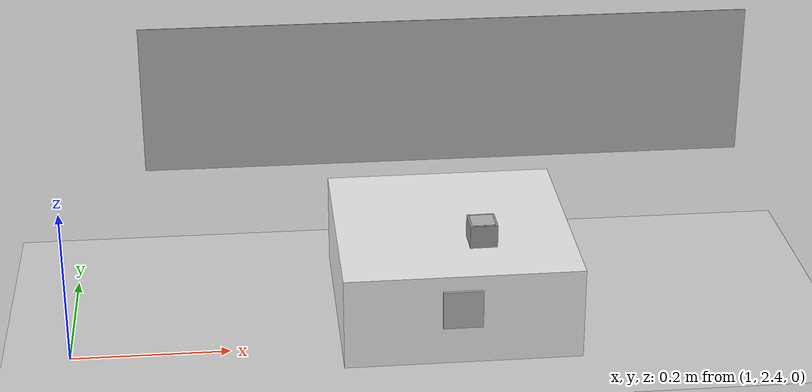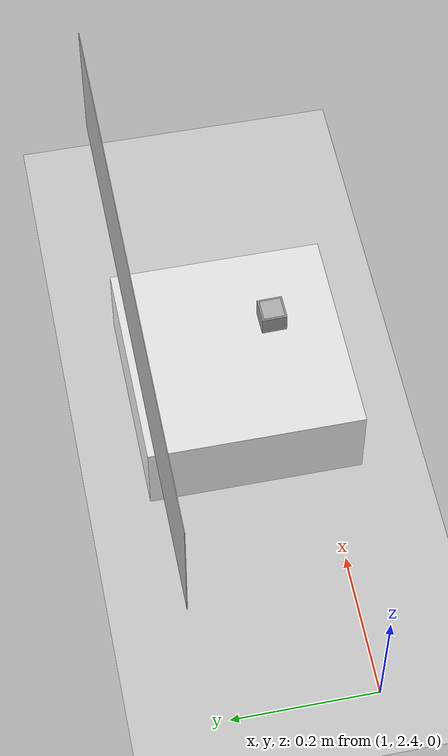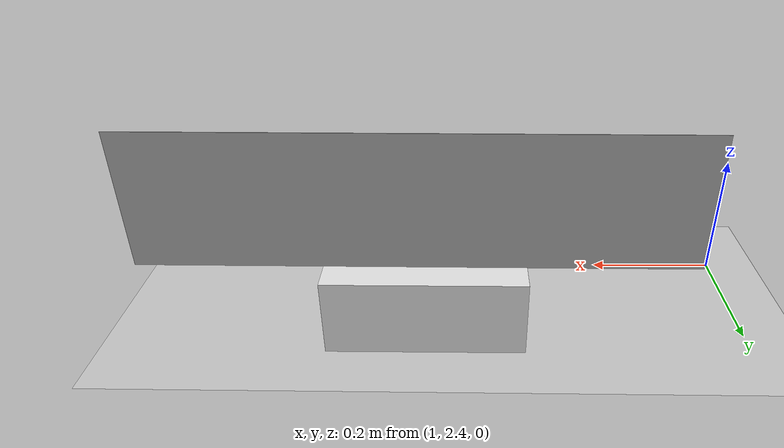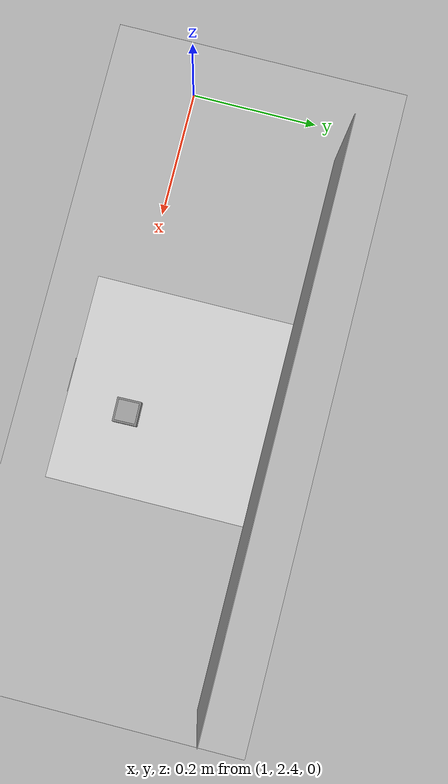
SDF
<sdf version="1.6">
 <world name="default">
  <model name="ground_plane">
   <static>1</static>
   <link name="link">
    <collision name="collision">
     <geometry><plane><normal>0 0 1</normal><size>100 100</size></plane></geometry>
     <surface><friction><ode><mu>100</mu><mu2>50</mu2></ode></friction></surface>
    </collision>
    <visual name="visual">
     <cast_shadows>0</cast_shadows>
     <geometry><plane><normal>0 0 1</normal><size>100 100</size></plane></geometry>
     <material>
      <script><uri>file://media/materials/scripts/gazebo.material</uri><name>Gazebo/Grey</name></script>
     </material>
    </visual>
   </link>
  </model>
  <model name="charge_pile_0">
   <link name="link_0">
    <pose>0.001175 0.064666 -0.007829 0 -0 0</pose>
    <inertial>
     <mass>1</mass>
     <inertia>
      <ixx>0.166667</ixx>
      <ixy>0</ixy>
      <ixz>0</ixz>
      <iyy>0.166667</iyy>
      <iyz>0</iyz>
      <izz>0.166667</izz>
     </inertia>
    </inertial>
    <visual name="visual">
     <geometry><box><size>0.3 0.3 0.12</size></box></geometry>
     <material>
      <lighting>1</lighting>
      <script><uri>file://media/materials/scripts/gazebo.material</uri><name>Gazebo/White</name></script>
      <ambient>0.3 0.3 0.3 1</ambient>
      <diffuse>0.7 0.7 0.7 1</diffuse>
      <specular>0.01 0.01 0.01 1</specular>
      <emissive>0 0 0 1</emissive>
      <shader type="vertex"><normal_map>__default__</normal_map></shader>
     </material>
    </visual>
    <collision name="collision">
     <geometry><box><size>0.3 0.3 0.12</size></box></geometry>
     <surface>
      <friction>
       <ode><mu>1000</mu><mu2>1000</mu2><fdir1>0 0 0</fdir1><slip1>0</slip1><slip2>0</slip2></ode>
       <torsional>
        <coefficient>1</coefficient>
        <patch_radius>0</patch_radius>
        <surface_radius>0</surface_radius>
        <use_patch_radius>1</use_patch_radius>
        <ode><slip>0</slip></ode>
       </torsional>
      </friction>
      <bounce><restitution_coefficient>0</restitution_coefficient><threshold>1e+06</threshold></bounce>
      <contact>
       <collide_without_contact>0</collide_without_contact>
       <collide_without_contact_bitmask>1</collide_without_contact_bitmask>
       <collide_bitmask>1</collide_bitmask>
       <ode>
        <soft_cfm>0</soft_cfm>
        <soft_erp>0.2</soft_erp>
        <kp>1e+13</kp>
        <kd>1</kd>
        <max_vel>0.01</max_vel>
        <min_depth>0</min_depth>
       </ode>
       <bullet>
        <split_impulse>1</split_impulse>
        <split_impulse_penetration_threshold>-0.01</split_impulse_penetration_threshold>
        <soft_cfm>0</soft_cfm>
        <soft_erp>0.2</soft_erp>
        <kp>1e+13</kp>
        <kd>1</kd>
       </bullet>
      </contact>
     </surface>
    </collision>
   </link>
   <model name="ar_box0_50">
    <link name="link_0">
     <inertial>
      <mass>1.87342e-05</mass>
      <inertia>
       <ixx>9.25984e-08</ixx>
       <ixy>0</ixy>
       <ixz>0</ixz>
       <iyy>1.0155e-07</iyy>
       <iyz>0</iyz>
       <izz>1.22113e-07</izz>
      </inertia>
     </inertial>
     <visual name="visual">
      <geometry><box><size>0.05 0.05 0.05</size></box></geometry>
      <material>
       <lighting>1</lighting>
       <script>
        <uri>model://ar_box0_50/materials/scripts</uri>
        <uri>model://ar_box0_50/materials/textures</uri>
        <name>ArBox050/Image</name>
       </script>
       <ambient>0.3 0.3 0.3 1</ambient>
       <diffuse>0.7 0.7 0.7 1</diffuse>
       <specular>0.01 0.01 0.01 1</specular>
       <emissive>0 0 0 1</emissive>
      </material>
      <cast_shadows>0</cast_shadows>
     </visual>
     <collision name="collision">
      <geometry><box><size>0.05 0.05 0.05</size></box></geometry>
      <surface>
       <friction>
        <ode><mu>100</mu><mu2>100</mu2><fdir1>0 0 0</fdir1><slip1>0</slip1><slip2>0</slip2></ode>
        <torsional>
         <coefficient>1</coefficient>
         <patch_radius>0</patch_radius>
         <surface_radius>0</surface_radius>
         <use_patch_radius>1</use_patch_radius>
         <ode><slip>0</slip></ode>
        </torsional>
       </friction>
       <bounce><restitution_coefficient>0</restitution_coefficient><threshold>1e+06</threshold></bounce>
       <contact>
        <collide_without_contact>0</collide_without_contact>
        <collide_without_contact_bitmask>1</collide_without_contact_bitmask>
        <collide_bitmask>1</collide_bitmask>
        <ode>
         <soft_cfm>0</soft_cfm>
         <soft_erp>0.2</soft_erp>
         <kp>1e+13</kp>
         <kd>1</kd>
         <max_vel>0.01</max_vel>
         <min_depth>0</min_depth>
        </ode>
        <bullet>
         <split_impulse>1</split_impulse>
         <split_impulse_penetration_threshold>-0.01</split_impulse_penetration_threshold>
         <soft_cfm>0</soft_cfm>
         <soft_erp>0.2</soft_erp>
         <kp>1e+13</kp>
         <kd>1</kd>
        </bullet>
       </contact>
      </surface>
     </collision>
    </link>
    <static>0</static>
    <pose>-0.001175 -0.064151 0.007829 0 -0 0</pose>
   </model>
   <joint name="link_0_JOINT_0" type="fixed">
    <parent>link_0</parent>
    <child>ar_box0_50::link_0</child>
    <physics>
     <ode><limit><cfm>0</cfm><erp>0.2</erp></limit><suspension><cfm>0</cfm><erp>0.2</erp></suspension></ode>
    </physics>
   </joint>
   <static>0</static>
   <pose>1.48811 2.43027 0.067829 0 -1e-06 0.00331</pose>
  </model>
  <model name="Textdepot">
   <link name="link_0">
    <inertial>
     <mass>1</mass>
     <inertia>
      <ixx>0.166667</ixx>
      <ixy>0</ixy>
      <ixz>0</ixz>
      <iyy>0.166667</iyy>
      <iyz>0</iyz>
      <izz>0.166667</izz>
     </inertia>
    </inertial>
    <visual name="visual">
     <geometry><box><size>0.799997 0.001 0.2</size></box></geometry>
     <material>
      <lighting>1</lighting>
      <script>
       <uri>model://Text/materials/scripts</uri>
       <uri>model://Text/materials/textures</uri>
       <name>Depot/Image</name>
      </script>
      <ambient>0.3 0.3 0.3 1</ambient>
      <diffuse>0.7 0.7 0.7 1</diffuse>
      <specular>0.01 0.01 0.01 1</specular>
      <emissive>0 0 0 1</emissive>
      <shader type="vertex"><normal_map>__default__</normal_map></shader>
     </material>
    </visual>
    <collision name="collision">
     <geometry><box><size>0.000999982 0.001 0.000999956</size></box></geometry>
     <surface>
      <friction>
       <ode><mu>1</mu><mu2>1</mu2><fdir1>0 0 0</fdir1><slip1>0</slip1><slip2>0</slip2></ode>
       <torsional>
        <coefficient>1</coefficient>
        <patch_radius>0</patch_radius>
        <surface_radius>0</surface_radius>
        <use_patch_radius>1</use_patch_radius>
        <ode><slip>0</slip></ode>
       </torsional>
      </friction>
      <bounce><restitution_coefficient>0</restitution_coefficient><threshold>1e+06</threshold></bounce>
      <contact>
       <collide_without_contact>0</collide_without_contact>
       <collide_without_contact_bitmask>1</collide_without_contact_bitmask>
       <collide_bitmask>1</collide_bitmask>
       <ode>
        <soft_cfm>0</soft_cfm>
        <soft_erp>0.2</soft_erp>
        <kp>1e+13</kp>
        <kd>1</kd>
        <max_vel>0.01</max_vel>
        <min_depth>0</min_depth>
       </ode>
       <bullet>
        <split_impulse>1</split_impulse>
        <split_impulse_penetration_threshold>-0.01</split_impulse_penetration_threshold>
        <soft_cfm>0</soft_cfm>
        <soft_erp>0.2</soft_erp>
        <kp>1e+13</kp>
        <kd>1</kd>
       </bullet>
      </contact>
     </surface>
    </collision>
   </link>
   <static>1</static>
   <pose>1.49576 2.63584 0.246075 0 -0 0</pose>
  </model>
  <model name="ar_box2_one_0">
   <link name="link_0">
    <inertial>
     <mass>0.2</mass>
     <inertia>
      <ixx>0.166667</ixx>
      <ixy>0</ixy>
      <ixz>0</ixz>
      <iyy>0.166667</iyy>
      <iyz>0</iyz>
      <izz>0.166667</izz>
     </inertia>
    </inertial>
    <visual name="visual">
     <geometry><box><size>0.035 0.035 0.03</size></box></geometry>
     <material>
      <lighting>1</lighting>
      <script><uri>file://media/materials/scripts/gazebo.material</uri><name>Gazebo/Grey</name></script>
      <ambient>0.3 0.3 0.3 1</ambient>
      <diffuse>0.7 0.7 0.7 1</diffuse>
      <specular>0.01 0.01 0.01 1</specular>
      <emissive>1 1 1 1</emissive>
      <shader type="vertex"><normal_map>__default__</normal_map></shader>
     </material>
    </visual>
    <collision name="collision">
     <geometry><cylinder><radius>0.0214</radius><length>0.03</length></cylinder></geometry>
     <surface>
      <friction><ode><mu>1</mu><mu2>1</mu2></ode></friction>
      <bounce><restitution_coefficient>0</restitution_coefficient><threshold>1e+06</threshold></bounce>
      <contact>
       <collide_without_contact>0</collide_without_contact>
       <collide_without_contact_bitmask>1</collide_without_contact_bitmask>
       <collide_bitmask>1</collide_bitmask>
       <ode>
        <soft_cfm>0</soft_cfm>
        <soft_erp>0.2</soft_erp>
        <kp>1e+13</kp>
        <kd>1</kd>
        <max_vel>0.01</max_vel>
        <min_depth>0</min_depth>
       </ode>
       <bullet>
        <split_impulse>1</split_impulse>
        <split_impulse_penetration_threshold>-0.01</split_impulse_penetration_threshold>
        <soft_cfm>0</soft_cfm>
        <soft_erp>0.2</soft_erp>
        <kp>1e+13</kp>
        <kd>1</kd>
       </bullet>
      </contact>
     </surface>
    </collision>
   </link>
   <model name="ar_box2">
    <link name="link_0">
     <inertial>
      <mass>1.87342e-05</mass>
      <inertia>
       <ixx>9.25984e-08</ixx>
       <ixy>0</ixy>
       <ixz>0</ixz>
       <iyy>1.0155e-07</iyy>
       <iyz>0</iyz>
       <izz>1.22113e-07</izz>
      </inertia>
     </inertial>
     <visual name="visual">
      <geometry><box><size>0.0298 0.0298 0.0305</size></box></geometry>
      <material>
       <lighting>1</lighting>
       <script>
        <uri>model://ar_box2/materials/scripts</uri>
        <uri>model://ar_box2/materials/textures</uri>
        <name>ArBox2/Image</name>
       </script>
       <ambient>0.3 0.3 0.3 1</ambient>
       <diffuse>0.7 0.7 0.7 1</diffuse>
       <specular>0.01 0.01 0.01 1</specular>
       <emissive>1 1 1 1</emissive>
      </material>
      <cast_shadows>0</cast_shadows>
     </visual>
     <collision name="collision">
      <geometry><box><size>0.03 0.03 0.03</size></box></geometry>
      <surface>
       <friction><ode><mu>2</mu><mu2>2</mu2></ode></friction>
       <bounce><restitution_coefficient>0</restitution_coefficient><threshold>1e+06</threshold></bounce>
       <contact>
        <collide_without_contact>0</collide_without_contact>
        <collide_without_contact_bitmask>1</collide_without_contact_bitmask>
        <collide_bitmask>1</collide_bitmask>
        <ode>
         <soft_cfm>0</soft_cfm>
         <soft_erp>0.2</soft_erp>
         <kp>1e+13</kp>
         <kd>1</kd>
         <max_vel>0.01</max_vel>
         <min_depth>0</min_depth>
        </ode>
        <bullet>
         <split_impulse>1</split_impulse>
         <split_impulse_penetration_threshold>-0.01</split_impulse_penetration_threshold>
         <soft_cfm>0</soft_cfm>
         <soft_erp>0.2</soft_erp>
         <kp>1e+13</kp>
         <kd>1</kd>
        </bullet>
       </contact>
      </surface>
     </collision>
    </link>
    <static>0</static>
   </model>
   <joint name="link_0_JOINT_0" type="fixed">
    <parent>link_0</parent>
    <child>ar_box2::link_0</child>
    <physics>
     <ode><limit><cfm>0</cfm><erp>0.2</erp></limit><suspension><cfm>0</cfm><erp>0.2</erp></suspension></ode>
    </physics>
   </joint>
   <static>0</static>
   <pose>1.52156 2.43708 0.135008 3.1414 -0.000324 1.59346</pose>
  </model>
 </world>
</sdf>
